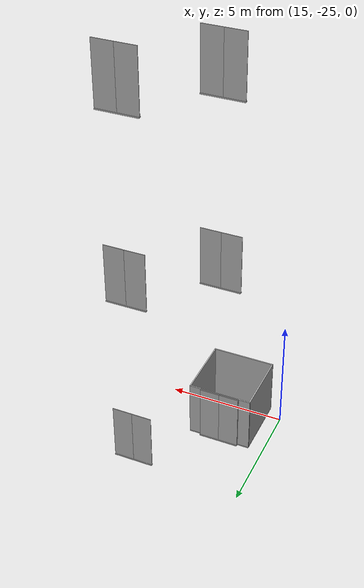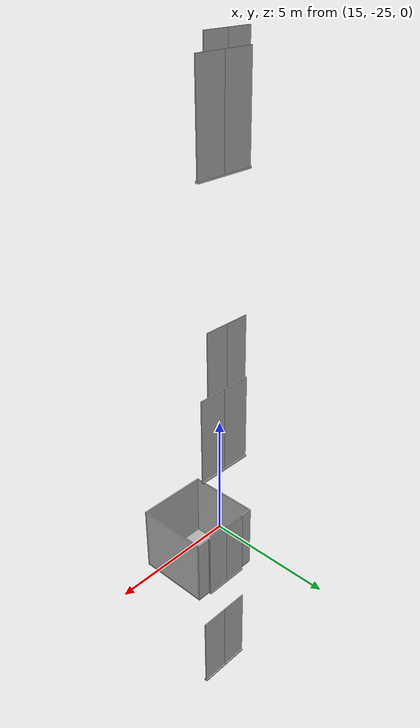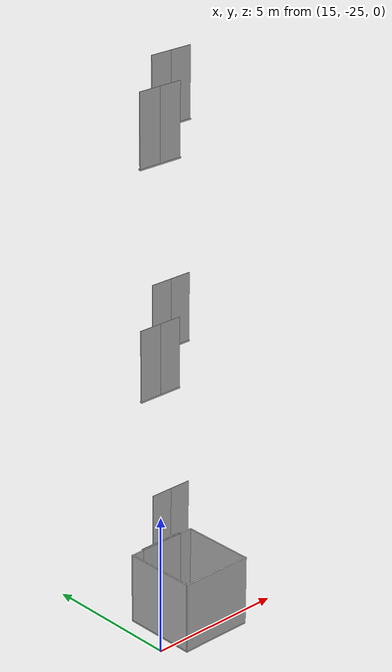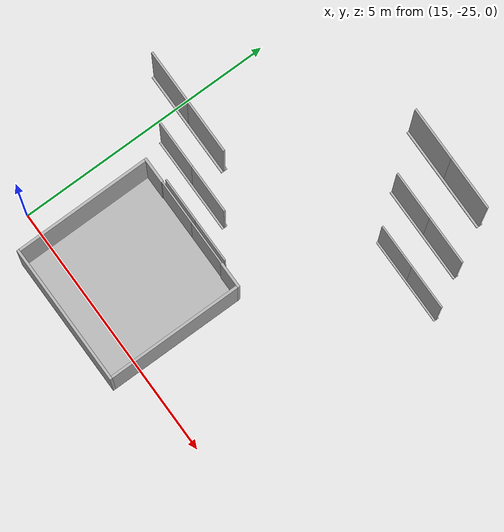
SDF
<sdf version="1.7">
 <world name="sim_world">
  <model name="ShaftDoor_Lift1_L1_lift1_door">
   <pose>19.766468308668816 -20.331265422387034 0.0 0 0 0.0</pose>
   <link name="right_door">
    <pose>0.425 0 1.25 0 0 0</pose>
    <visual name="right_door_visual">
     <geometry><box><size>0.85 0.03 2.5</size></box></geometry>
     <material>
      <ambient>0.5 0.5 0.5 1</ambient>
      <diffuse>0.7 0.7 0.7 1</diffuse>
      <specular>0.6 0.6 0.6 1</specular>
      <emissive>0.1 0.1 0.1 1</emissive>
     </material>
    </visual>
    <collision name="right_door_collision">
     <geometry><box><size>0.85 0.03 2.5</size></box></geometry>
     <surface><contact><collide_bitmask>0x02</collide_bitmask></contact></surface>
    </collision>
   </link>
   <link name="left_door">
    <pose>-0.425 0 1.25 0 0 0</pose>
    <visual name="left_door_visual">
     <geometry><box><size>0.85 0.03 2.5</size></box></geometry>
     <material>
      <ambient>0.5 0.5 0.5 1</ambient>
      <diffuse>0.7 0.7 0.7 1</diffuse>
      <specular>0.6 0.6 0.6 1</specular>
      <emissive>0.1 0.1 0.1 1</emissive>
     </material>
    </visual>
    <collision name="left_door_collision">
     <geometry><box><size>0.85 0.03 2.5</size></box></geometry>
     <surface><contact><collide_bitmask>0x02</collide_bitmask></contact></surface>
    </collision>
   </link>
   <joint name="right_joint" type="prismatic">
    <parent>world</parent>
    <child>right_door</child>
    <axis><xyz>1 0 0</xyz><limit><lower>0</lower><upper>0.85</upper></limit></axis>
   </joint>
   <joint name="left_joint" type="prismatic">
    <parent>world</parent>
    <child>left_door</child>
    <axis><xyz>1 0 0</xyz><limit><lower>-0.85</lower><upper>0</upper></limit></axis>
   </joint>
   <link name="ramp">
    <pose>0 0 -0.025 0 0 0</pose>
    <visual name="ramp_visual">
     <geometry><box><size>1.7 0.1 0.05</size></box></geometry>
     <material>
      <ambient>0.5 0.5 0.5 1</ambient>
      <diffuse>0.7 0.7 0.7 1</diffuse>
      <specular>0.6 0.6 0.6 1</specular>
      <emissive>0.1 0.1 0.1 1</emissive>
     </material>
    </visual>
    <collision name="ramp_collision">
     <geometry><box><size>1.7 0.1 0.05</size></box></geometry>
     <surface><contact><collide_bitmask>0x02</collide_bitmask></contact></surface>
    </collision>
   </link>
   <joint name="ramp_joint" type="fixed"><parent>world</parent><child>ramp</child></joint>
   <plugin name="register_component" filename="libregister_component.so">
    <component name="Door">
     <v_max_door>0.3</v_max_door>
     <a_max_door>0.2</a_max_door>
     <a_nom_door>0.1</a_nom_door>
     <dx_min_door>0.0001</dx_min_door>
     <f_max_door>35.0</f_max_door>
     <door left_joint_name="left_joint" name="ShaftDoor_Lift1_L1_lift1_door" right_joint_name="right_joint" type="DoubleSlidingDoor"/>
    </component>
   </plugin>
  </model>
  <model name="ShaftDoor_Lift1_L2_lift1_door">
   <pose>19.766468308668816 -20.331265422387034 8.0 0 0 0.0</pose>
   <link name="right_door">
    <pose>0.425 0 1.25 0 0 0</pose>
    <visual name="right_door_visual">
     <geometry><box><size>0.85 0.03 2.5</size></box></geometry>
     <material>
      <ambient>0.5 0.5 0.5 1</ambient>
      <diffuse>0.7 0.7 0.7 1</diffuse>
      <specular>0.6 0.6 0.6 1</specular>
      <emissive>0.1 0.1 0.1 1</emissive>
     </material>
    </visual>
    <collision name="right_door_collision">
     <geometry><box><size>0.85 0.03 2.5</size></box></geometry>
     <surface><contact><collide_bitmask>0x02</collide_bitmask></contact></surface>
    </collision>
   </link>
   <link name="left_door">
    <pose>-0.425 0 1.25 0 0 0</pose>
    <visual name="left_door_visual">
     <geometry><box><size>0.85 0.03 2.5</size></box></geometry>
     <material>
      <ambient>0.5 0.5 0.5 1</ambient>
      <diffuse>0.7 0.7 0.7 1</diffuse>
      <specular>0.6 0.6 0.6 1</specular>
      <emissive>0.1 0.1 0.1 1</emissive>
     </material>
    </visual>
    <collision name="left_door_collision">
     <geometry><box><size>0.85 0.03 2.5</size></box></geometry>
     <surface><contact><collide_bitmask>0x02</collide_bitmask></contact></surface>
    </collision>
   </link>
   <joint name="right_joint" type="prismatic">
    <parent>world</parent>
    <child>right_door</child>
    <axis><xyz>1 0 0</xyz><limit><lower>0</lower><upper>0.85</upper></limit></axis>
   </joint>
   <joint name="left_joint" type="prismatic">
    <parent>world</parent>
    <child>left_door</child>
    <axis><xyz>1 0 0</xyz><limit><lower>-0.85</lower><upper>0</upper></limit></axis>
   </joint>
   <link name="ramp">
    <pose>0 0 -0.025 0 0 0</pose>
    <visual name="ramp_visual">
     <geometry><box><size>1.7 0.1 0.05</size></box></geometry>
     <material>
      <ambient>0.5 0.5 0.5 1</ambient>
      <diffuse>0.7 0.7 0.7 1</diffuse>
      <specular>0.6 0.6 0.6 1</specular>
      <emissive>0.1 0.1 0.1 1</emissive>
     </material>
    </visual>
    <collision name="ramp_collision">
     <geometry><box><size>1.7 0.1 0.05</size></box></geometry>
     <surface><contact><collide_bitmask>0x02</collide_bitmask></contact></surface>
    </collision>
   </link>
   <joint name="ramp_joint" type="fixed"><parent>world</parent><child>ramp</child></joint>
   <plugin name="register_component" filename="libregister_component.so">
    <component name="Door">
     <v_max_door>0.3</v_max_door>
     <a_max_door>0.2</a_max_door>
     <a_nom_door>0.1</a_nom_door>
     <dx_min_door>0.0001</dx_min_door>
     <f_max_door>35.0</f_max_door>
     <door left_joint_name="left_joint" name="ShaftDoor_Lift1_L2_lift1_door" right_joint_name="right_joint" type="DoubleSlidingDoor"/>
    </component>
   </plugin>
  </model>
  <model name="ShaftDoor_Lift1_L3_lift1_door">
   <pose>19.766468308668816 -20.331265422387034 16.0 0 0 0.0</pose>
   <link name="right_door">
    <pose>0.425 0 1.25 0 0 0</pose>
    <visual name="right_door_visual">
     <geometry><box><size>0.85 0.03 2.5</size></box></geometry>
     <material>
      <ambient>0.5 0.5 0.5 1</ambient>
      <diffuse>0.7 0.7 0.7 1</diffuse>
      <specular>0.6 0.6 0.6 1</specular>
      <emissive>0.1 0.1 0.1 1</emissive>
     </material>
    </visual>
    <collision name="right_door_collision">
     <geometry><box><size>0.85 0.03 2.5</size></box></geometry>
     <surface><contact><collide_bitmask>0x02</collide_bitmask></contact></surface>
    </collision>
   </link>
   <link name="left_door">
    <pose>-0.425 0 1.25 0 0 0</pose>
    <visual name="left_door_visual">
     <geometry><box><size>0.85 0.03 2.5</size></box></geometry>
     <material>
      <ambient>0.5 0.5 0.5 1</ambient>
      <diffuse>0.7 0.7 0.7 1</diffuse>
      <specular>0.6 0.6 0.6 1</specular>
      <emissive>0.1 0.1 0.1 1</emissive>
     </material>
    </visual>
    <collision name="left_door_collision">
     <geometry><box><size>0.85 0.03 2.5</size></box></geometry>
     <surface><contact><collide_bitmask>0x02</collide_bitmask></contact></surface>
    </collision>
   </link>
   <joint name="right_joint" type="prismatic">
    <parent>world</parent>
    <child>right_door</child>
    <axis><xyz>1 0 0</xyz><limit><lower>0</lower><upper>0.85</upper></limit></axis>
   </joint>
   <joint name="left_joint" type="prismatic">
    <parent>world</parent>
    <child>left_door</child>
    <axis><xyz>1 0 0</xyz><limit><lower>-0.85</lower><upper>0</upper></limit></axis>
   </joint>
   <link name="ramp">
    <pose>0 0 -0.025 0 0 0</pose>
    <visual name="ramp_visual">
     <geometry><box><size>1.7 0.1 0.05</size></box></geometry>
     <material>
      <ambient>0.5 0.5 0.5 1</ambient>
      <diffuse>0.7 0.7 0.7 1</diffuse>
      <specular>0.6 0.6 0.6 1</specular>
      <emissive>0.1 0.1 0.1 1</emissive>
     </material>
    </visual>
    <collision name="ramp_collision">
     <geometry><box><size>1.7 0.1 0.05</size></box></geometry>
     <surface><contact><collide_bitmask>0x02</collide_bitmask></contact></surface>
    </collision>
   </link>
   <joint name="ramp_joint" type="fixed"><parent>world</parent><child>ramp</child></joint>
   <plugin name="register_component" filename="libregister_component.so">
    <component name="Door">
     <v_max_door>0.3</v_max_door>
     <a_max_door>0.2</a_max_door>
     <a_nom_door>0.1</a_nom_door>
     <dx_min_door>0.0001</dx_min_door>
     <f_max_door>35.0</f_max_door>
     <door left_joint_name="left_joint" name="ShaftDoor_Lift1_L3_lift1_door" right_joint_name="right_joint" type="DoubleSlidingDoor"/>
    </component>
   </plugin>
  </model>
  <model name="ShaftDoor_Lift2_L1_lift2_door">
   <pose>16.982458687729547 -22.82088370217165 0.0 0 0 0.0</pose>
   <link name="right_door">
    <pose>0.425 0 1.25 0 0 0</pose>
    <visual name="right_door_visual">
     <geometry><box><size>0.85 0.03 2.5</size></box></geometry>
     <material>
      <ambient>0.5 0.5 0.5 1</ambient>
      <diffuse>0.7 0.7 0.7 1</diffuse>
      <specular>0.6 0.6 0.6 1</specular>
      <emissive>0.1 0.1 0.1 1</emissive>
     </material>
    </visual>
    <collision name="right_door_collision">
     <geometry><box><size>0.85 0.03 2.5</size></box></geometry>
     <surface><contact><collide_bitmask>0x02</collide_bitmask></contact></surface>
    </collision>
   </link>
   <link name="left_door">
    <pose>-0.425 0 1.25 0 0 0</pose>
    <visual name="left_door_visual">
     <geometry><box><size>0.85 0.03 2.5</size></box></geometry>
     <material>
      <ambient>0.5 0.5 0.5 1</ambient>
      <diffuse>0.7 0.7 0.7 1</diffuse>
      <specular>0.6 0.6 0.6 1</specular>
      <emissive>0.1 0.1 0.1 1</emissive>
     </material>
    </visual>
    <collision name="left_door_collision">
     <geometry><box><size>0.85 0.03 2.5</size></box></geometry>
     <surface><contact><collide_bitmask>0x02</collide_bitmask></contact></surface>
    </collision>
   </link>
   <joint name="right_joint" type="prismatic">
    <parent>world</parent>
    <child>right_door</child>
    <axis><xyz>1 0 0</xyz><limit><lower>0</lower><upper>0.85</upper></limit></axis>
   </joint>
   <joint name="left_joint" type="prismatic">
    <parent>world</parent>
    <child>left_door</child>
    <axis><xyz>1 0 0</xyz><limit><lower>-0.85</lower><upper>0</upper></limit></axis>
   </joint>
   <link name="ramp">
    <pose>0 0 -0.025 0 0 0</pose>
    <visual name="ramp_visual">
     <geometry><box><size>1.7 0.1 0.05</size></box></geometry>
     <material>
      <ambient>0.5 0.5 0.5 1</ambient>
      <diffuse>0.7 0.7 0.7 1</diffuse>
      <specular>0.6 0.6 0.6 1</specular>
      <emissive>0.1 0.1 0.1 1</emissive>
     </material>
    </visual>
    <collision name="ramp_collision">
     <geometry><box><size>1.7 0.1 0.05</size></box></geometry>
     <surface><contact><collide_bitmask>0x02</collide_bitmask></contact></surface>
    </collision>
   </link>
   <joint name="ramp_joint" type="fixed"><parent>world</parent><child>ramp</child></joint>
   <plugin name="register_component" filename="libregister_component.so">
    <component name="Door">
     <v_max_door>0.3</v_max_door>
     <a_max_door>0.2</a_max_door>
     <a_nom_door>0.1</a_nom_door>
     <dx_min_door>0.0001</dx_min_door>
     <f_max_door>35.0</f_max_door>
     <door left_joint_name="left_joint" name="ShaftDoor_Lift2_L1_lift2_door" right_joint_name="right_joint" type="DoubleSlidingDoor"/>
    </component>
   </plugin>
  </model>
  <model name="ShaftDoor_Lift2_L2_lift2_door">
   <pose>16.982458687729547 -22.82088370217165 8.0 0 0 0.0</pose>
   <link name="right_door">
    <pose>0.425 0 1.25 0 0 0</pose>
    <visual name="right_door_visual">
     <geometry><box><size>0.85 0.03 2.5</size></box></geometry>
     <material>
      <ambient>0.5 0.5 0.5 1</ambient>
      <diffuse>0.7 0.7 0.7 1</diffuse>
      <specular>0.6 0.6 0.6 1</specular>
      <emissive>0.1 0.1 0.1 1</emissive>
     </material>
    </visual>
    <collision name="right_door_collision">
     <geometry><box><size>0.85 0.03 2.5</size></box></geometry>
     <surface><contact><collide_bitmask>0x02</collide_bitmask></contact></surface>
    </collision>
   </link>
   <link name="left_door">
    <pose>-0.425 0 1.25 0 0 0</pose>
    <visual name="left_door_visual">
     <geometry><box><size>0.85 0.03 2.5</size></box></geometry>
     <material>
      <ambient>0.5 0.5 0.5 1</ambient>
      <diffuse>0.7 0.7 0.7 1</diffuse>
      <specular>0.6 0.6 0.6 1</specular>
      <emissive>0.1 0.1 0.1 1</emissive>
     </material>
    </visual>
    <collision name="left_door_collision">
     <geometry><box><size>0.85 0.03 2.5</size></box></geometry>
     <surface><contact><collide_bitmask>0x02</collide_bitmask></contact></surface>
    </collision>
   </link>
   <joint name="right_joint" type="prismatic">
    <parent>world</parent>
    <child>right_door</child>
    <axis><xyz>1 0 0</xyz><limit><lower>0</lower><upper>0.85</upper></limit></axis>
   </joint>
   <joint name="left_joint" type="prismatic">
    <parent>world</parent>
    <child>left_door</child>
    <axis><xyz>1 0 0</xyz><limit><lower>-0.85</lower><upper>0</upper></limit></axis>
   </joint>
   <link name="ramp">
    <pose>0 0 -0.025 0 0 0</pose>
    <visual name="ramp_visual">
     <geometry><box><size>1.7 0.1 0.05</size></box></geometry>
     <material>
      <ambient>0.5 0.5 0.5 1</ambient>
      <diffuse>0.7 0.7 0.7 1</diffuse>
      <specular>0.6 0.6 0.6 1</specular>
      <emissive>0.1 0.1 0.1 1</emissive>
     </material>
    </visual>
    <collision name="ramp_collision">
     <geometry><box><size>1.7 0.1 0.05</size></box></geometry>
     <surface><contact><collide_bitmask>0x02</collide_bitmask></contact></surface>
    </collision>
   </link>
   <joint name="ramp_joint" type="fixed"><parent>world</parent><child>ramp</child></joint>
   <plugin name="register_component" filename="libregister_component.so">
    <component name="Door">
     <v_max_door>0.3</v_max_door>
     <a_max_door>0.2</a_max_door>
     <a_nom_door>0.1</a_nom_door>
     <dx_min_door>0.0001</dx_min_door>
     <f_max_door>35.0</f_max_door>
     <door left_joint_name="left_joint" name="ShaftDoor_Lift2_L2_lift2_door" right_joint_name="right_joint" type="DoubleSlidingDoor"/>
    </component>
   </plugin>
  </model>
  <model name="ShaftDoor_Lift2_L3_lift2_door">
   <pose>16.982458687729547 -22.82088370217165 16.0 0 0 0.0</pose>
   <link name="right_door">
    <pose>0.425 0 1.25 0 0 0</pose>
    <visual name="right_door_visual">
     <geometry><box><size>0.85 0.03 2.5</size></box></geometry>
     <material>
      <ambient>0.5 0.5 0.5 1</ambient>
      <diffuse>0.7 0.7 0.7 1</diffuse>
      <specular>0.6 0.6 0.6 1</specular>
      <emissive>0.1 0.1 0.1 1</emissive>
     </material>
    </visual>
    <collision name="right_door_collision">
     <geometry><box><size>0.85 0.03 2.5</size></box></geometry>
     <surface><contact><collide_bitmask>0x02</collide_bitmask></contact></surface>
    </collision>
   </link>
   <link name="left_door">
    <pose>-0.425 0 1.25 0 0 0</pose>
    <visual name="left_door_visual">
     <geometry><box><size>0.85 0.03 2.5</size></box></geometry>
     <material>
      <ambient>0.5 0.5 0.5 1</ambient>
      <diffuse>0.7 0.7 0.7 1</diffuse>
      <specular>0.6 0.6 0.6 1</specular>
      <emissive>0.1 0.1 0.1 1</emissive>
     </material>
    </visual>
    <collision name="left_door_collision">
     <geometry><box><size>0.85 0.03 2.5</size></box></geometry>
     <surface><contact><collide_bitmask>0x02</collide_bitmask></contact></surface>
    </collision>
   </link>
   <joint name="right_joint" type="prismatic">
    <parent>world</parent>
    <child>right_door</child>
    <axis><xyz>1 0 0</xyz><limit><lower>0</lower><upper>0.85</upper></limit></axis>
   </joint>
   <joint name="left_joint" type="prismatic">
    <parent>world</parent>
    <child>left_door</child>
    <axis><xyz>1 0 0</xyz><limit><lower>-0.85</lower><upper>0</upper></limit></axis>
   </joint>
   <link name="ramp">
    <pose>0 0 -0.025 0 0 0</pose>
    <visual name="ramp_visual">
     <geometry><box><size>1.7 0.1 0.05</size></box></geometry>
     <material>
      <ambient>0.5 0.5 0.5 1</ambient>
      <diffuse>0.7 0.7 0.7 1</diffuse>
      <specular>0.6 0.6 0.6 1</specular>
      <emissive>0.1 0.1 0.1 1</emissive>
     </material>
    </visual>
    <collision name="ramp_collision">
     <geometry><box><size>1.7 0.1 0.05</size></box></geometry>
     <surface><contact><collide_bitmask>0x02</collide_bitmask></contact></surface>
    </collision>
   </link>
   <joint name="ramp_joint" type="fixed"><parent>world</parent><child>ramp</child></joint>
   <plugin name="register_component" filename="libregister_component.so">
    <component name="Door">
     <v_max_door>0.3</v_max_door>
     <a_max_door>0.2</a_max_door>
     <a_nom_door>0.1</a_nom_door>
     <dx_min_door>0.0001</dx_min_door>
     <f_max_door>35.0</f_max_door>
     <door left_joint_name="left_joint" name="ShaftDoor_Lift2_L3_lift2_door" right_joint_name="right_joint" type="DoubleSlidingDoor"/>
    </component>
   </plugin>
  </model>
  <model name="Lift2">
   <link name="platform">
    <inertial>
     <mass>1200</mass>
     <inertia><ixx>729.2500000000001</ixx><iyy>729.2500000000001</iyy><izz>1458.0000000000002</izz></inertia>
    </inertial>
    <visual name="floor_visual">
     <pose>0 0 -0.025 0 0 0</pose>
     <geometry><box><size>2.7 2.7 0.05</size></box></geometry>
     <material>
      <ambient>0.5 0.5 0.5 1</ambient>
      <diffuse>0.7 0.7 0.7 1</diffuse>
      <specular>0.6 0.6 0.6 1</specular>
      <emissive>0.1 0.1 0.1 1</emissive>
     </material>
    </visual>
    <collision name="floor_collision">
     <pose>0 0 -0.025 0 0 0</pose>
     <geometry><box><size>2.7 2.7 0.05</size></box></geometry>
     <surface><contact><collide_bitmask>0x01</collide_bitmask></contact></surface>
    </collision>
    <visual name="frontwall1_visual">
     <pose>-1.1 1.3250000000000002 1.25 0 0 0</pose>
     <geometry><box><size>0.5000000000000001 0.05 2.5</size></box></geometry>
     <material>
      <ambient>0.5 0.5 0.5 1</ambient>
      <diffuse>0.7 0.7 0.7 1</diffuse>
      <specular>0.6 0.6 0.6 1</specular>
      <emissive>0.1 0.1 0.1 1</emissive>
     </material>
    </visual>
    <collision name="frontwall1_collision">
     <pose>-1.1 1.3250000000000002 1.25 0 0 0</pose>
     <geometry><box><size>0.5000000000000001 0.05 2.5</size></box></geometry>
     <surface><contact><collide_bitmask>0x01</collide_bitmask></contact></surface>
    </collision>
    <visual name="frontwall2_visual">
     <pose>1.1 1.3250000000000002 1.25 0 0 0</pose>
     <geometry><box><size>0.5000000000000001 0.05 2.5</size></box></geometry>
     <material>
      <ambient>0.5 0.5 0.5 1</ambient>
      <diffuse>0.7 0.7 0.7 1</diffuse>
      <specular>0.6 0.6 0.6 1</specular>
      <emissive>0.1 0.1 0.1 1</emissive>
     </material>
    </visual>
    <collision name="frontwall2_collision">
     <pose>1.1 1.3250000000000002 1.25 0 0 0</pose>
     <geometry><box><size>0.5000000000000001 0.05 2.5</size></box></geometry>
     <surface><contact><collide_bitmask>0x01</collide_bitmask></contact></surface>
    </collision>
    <visual name="backwall1_visual">
     <pose>0.0 -1.3250000000000002 1.25 0 0 0</pose>
     <geometry><box><size>2.7 0.05 2.5</size></box></geometry>
     <material>
      <ambient>0.5 0.5 0.5 1</ambient>
      <diffuse>0.7 0.7 0.7 1</diffuse>
      <specular>0.6 0.6 0.6 1</specular>
      <emissive>0.1 0.1 0.1 1</emissive>
     </material>
    </visual>
    <collision name="backwall1_collision">
     <pose>0.0 -1.3250000000000002 1.25 0 0 0</pose>
     <geometry><box><size>2.7 0.05 2.5</size></box></geometry>
     <surface><contact><collide_bitmask>0x01</collide_bitmask></contact></surface>
    </collision>
    <visual name="leftwall1_visual">
     <pose>-1.3250000000000002 0.0 1.25 0 0 1.5707963267948966</pose>
     <geometry><box><size>2.6 0.05 2.5</size></box></geometry>
     <material>
      <ambient>0.5 0.5 0.5 1</ambient>
      <diffuse>0.7 0.7 0.7 1</diffuse>
      <specular>0.6 0.6 0.6 1</specular>
      <emissive>0.1 0.1 0.1 1</emissive>
     </material>
    </visual>
    <collision name="leftwall1_collision">
     <pose>-1.3250000000000002 0.0 1.25 0 0 1.5707963267948966</pose>
     <geometry><box><size>2.6 0.05 2.5</size></box></geometry>
     <surface><contact><collide_bitmask>0x01</collide_bitmask></contact></surface>
    </collision>
    <visual name="rightwall1_visual">
     <pose>1.3250000000000002 0.0 1.25 0 0 1.5707963267948966</pose>
     <geometry><box><size>2.6 0.05 2.5</size></box></geometry>
     <material>
      <ambient>0.5 0.5 0.5 1</ambient>
      <diffuse>0.7 0.7 0.7 1</diffuse>
      <specular>0.6 0.6 0.6 1</specular>
      <emissive>0.1 0.1 0.1 1</emissive>
     </material>
    </visual>
    <collision name="rightwall1_collision">
     <pose>1.3250000000000002 0.0 1.25 0 0 1.5707963267948966</pose>
     <geometry><box><size>2.6 0.05 2.5</size></box></geometry>
     <surface><contact><collide_bitmask>0x01</collide_bitmask></contact></surface>
    </collision>
   </link>
   <joint name="cabin_joint" type="prismatic">
    <parent>world</parent>
    <child>platform</child>
    <axis><xyz>0 0 1</xyz></axis>
   </joint>
   <model name="CabinDoor_Lift2_lift2_door">
    <pose>0.0 1.3250000000000002 0 0 0 0.0</pose>
    <link name="right_door">
     <pose>0.425 0 1.25 0 0 0</pose>
     <visual name="right_door_visual">
      <geometry><box><size>0.85 0.03 2.5</size></box></geometry>
      <material>
       <ambient>0.5 0.5 0.5 1</ambient>
       <diffuse>0.7 0.7 0.7 1</diffuse>
       <specular>0.6 0.6 0.6 1</specular>
       <emissive>0.1 0.1 0.1 1</emissive>
      </material>
     </visual>
     <collision name="right_door_collision">
      <geometry><box><size>0.85 0.03 2.5</size></box></geometry>
      <surface><contact><collide_bitmask>0x02</collide_bitmask></contact></surface>
     </collision>
    </link>
    <link name="left_door">
     <pose>-0.425 0 1.25 0 0 0</pose>
     <visual name="left_door_visual">
      <geometry><box><size>0.85 0.03 2.5</size></box></geometry>
      <material>
       <ambient>0.5 0.5 0.5 1</ambient>
       <diffuse>0.7 0.7 0.7 1</diffuse>
       <specular>0.6 0.6 0.6 1</specular>
       <emissive>0.1 0.1 0.1 1</emissive>
      </material>
     </visual>
     <collision name="left_door_collision">
      <geometry><box><size>0.85 0.03 2.5</size></box></geometry>
      <surface><contact><collide_bitmask>0x02</collide_bitmask></contact></surface>
     </collision>
    </link>
    <plugin name="register_component" filename="libregister_component.so">
     <component name="Door">
      <v_max_door>0.3</v_max_door>
      <a_max_door>0.2</a_max_door>
      <a_nom_door>0.1</a_nom_door>
      <dx_min_door>0.0001</dx_min_door>
      <f_max_door>35.0</f_max_door>
      <door left_joint_name="CabinDoor_Lift2_lift2_door_left_joint" name="CabinDoor_Lift2_lift2_door" right_joint_name="CabinDoor_Lift2_lift2_door_right_joint" type="DoubleSlidingDoor"/>
     </component>
    </plugin>
   </model>
   <joint name="CabinDoor_Lift2_lift2_door_right_joint" type="prismatic">
    <parent>platform</parent>
    <child>CabinDoor_Lift2_lift2_door::right_door</child>
    <axis><xyz>1 0 0</xyz><limit><lower>0</lower><upper>0.85</upper></limit></axis>
   </joint>
   <joint name="CabinDoor_Lift2_lift2_door_left_joint" type="prismatic">
    <parent>platform</parent>
    <child>CabinDoor_Lift2_lift2_door::left_door</child>
    <axis><xyz>1 0 0</xyz><limit><lower>-0.85</lower><upper>0</upper></limit></axis>
   </joint>
   <plugin name="register_component" filename="libregister_component.so">
    <component name="Lift">
     <lift_name>Lift2</lift_name>
     <floor name="L1" elevation="0.0">
      <door_pair cabin_door="CabinDoor_Lift2_lift2_door" shaft_door="ShaftDoor_Lift2_L1_lift2_door"/>
     </floor>
     <floor name="L2" elevation="8.0">
      <door_pair cabin_door="CabinDoor_Lift2_lift2_door" shaft_door="ShaftDoor_Lift2_L2_lift2_door"/>
     </floor>
     <floor name="L3" elevation="16.0">
      <door_pair cabin_door="CabinDoor_Lift2_lift2_door" shaft_door="ShaftDoor_Lift2_L3_lift2_door"/>
     </floor>
     <initial_floor>L1</initial_floor>
     <v_max_cabin>2.0</v_max_cabin>
     <a_max_cabin>1.2</a_max_cabin>
     <a_nom_cabin>1.0</a_nom_cabin>
     <dx_min_cabin>0.001</dx_min_cabin>
     <f_max_cabin>25323.0</f_max_cabin>
     <cabin_joint_name>cabin_joint</cabin_joint_name>
    </component>
   </plugin>
   <pose>16.982458687729547 -24.220883702171648 0 0 0 0.0</pose>
  </model>
 </world>
</sdf>
